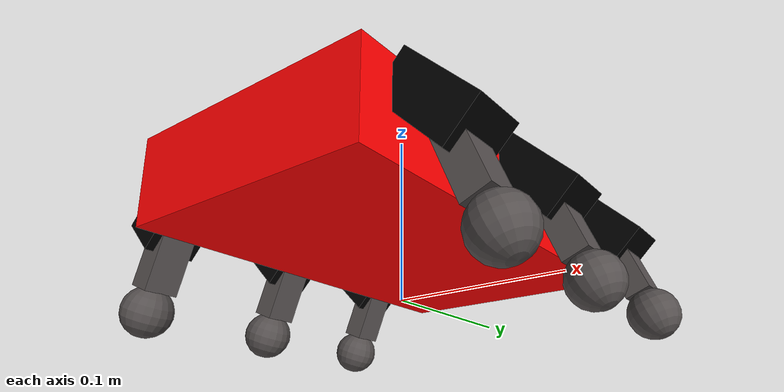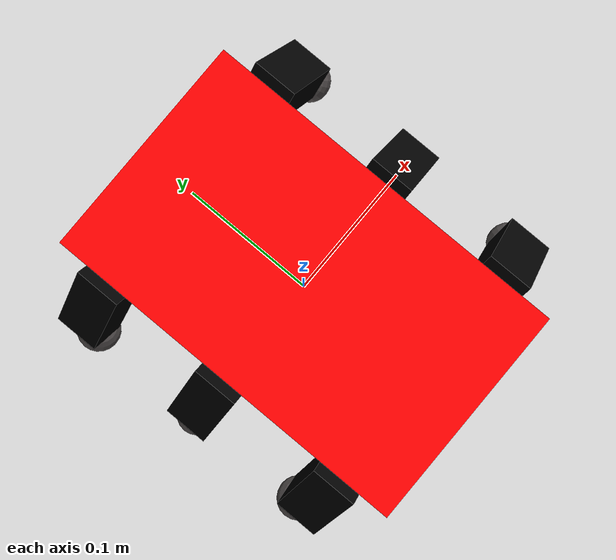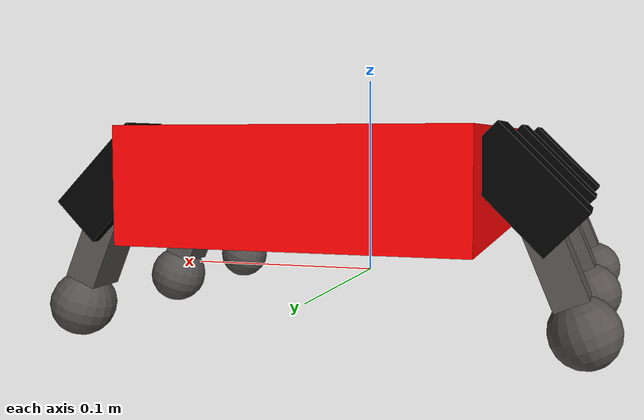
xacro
<?xml version="1.0"?>

<robot name="aranya6" xmlns:xacro="http://ros.org/wiki/xacro">

    <material name="red">
        <color rgba="1.0 0.0 0.0 1.0"/>
    </material>

    <material name="black">
        <color rgba="0.0 0.0 0.0 1.0"/>
    </material>

    <material name="gray">
        <color rgba="0.33 0.309 0.30588 1.0"/>
    </material>

    <!--copiat del tutorial-->
  <xacro:macro name="inercia_inicial" params="mass">
    <inertial>
      <mass value="${mass}" />
      <inertia ixx="1e-3" ixy="0.0" ixz="0.0" iyy="1e-3" iyz="0.0" izz="1e-3" />
    </inertial>
  </xacro:macro>

    <link name="base_footprint"/>

    <link name="base">
        <visual>
            <geometry>
                <box size="0.15 0.25 0.05"/> <!--Asi ni ha que especificar volumen-->
            </geometry>
            <origin xyz="0.0 0.0 0.0" rpy="0.0 0.0 0.0"/>
            <material name="red"/>
        </visual>
    </link>

    <joint name="base_joint" type="fixed">
        <parent link="base_footprint"/>
        <child link="base"/>
        <origin xyz="0.0 0.0 0.05" rpy="0.0 0.0 0.0"/>
    </joint>

    <xacro:macro name="articulacion1" params="nombre dx dy neg">
        <link name="articulacion1_${nombre}">
            <visual>
                <geometry>
                    <box size="0.025 0.03 0.05"/>
                </geometry>
                <origin xyz="0.0 0.0 0.0" rpy="0.0 0.0 0.0"/>
                <material name="black"/>
            </visual>

            <collision>
                <geometry>
                    <box size="0.025 0.03 0.05"/>
                </geometry>
            </collision>
        </link>

        <joint name="base_pata_${nombre}" type="revolute">
            <parent link="base"/>
            <child link="articulacion1_${nombre}"/>
            <origin xyz="${dx} ${dy} 0.0" rpy="0.0 ${neg*pi/4} 0.0"/>

            <axis xyz="0.0 1.0 0.0"/>
            <limit lower="${-pi/4}" upper="${pi/4}" effort="10.0" velocity="1.0"/>
        </joint>

    </xacro:macro>

    <xacro:articulacion1 nombre="1" dx="0.09" dy="0.09" neg="-1"/>
    <xacro:articulacion1 nombre="2" dx="-0.09" dy="0.09" neg="1"/>
    <xacro:articulacion1 nombre="3" dx="0.09" dy="-0.09" neg="-1"/>
    <xacro:articulacion1 nombre="4" dx="-0.09" dy="-0.09" neg="1"/>
    <xacro:articulacion1 nombre="5" dx="0.09" dy="0.0" neg="-1"/>
    <xacro:articulacion1 nombre="6" dx="-0.09" dy="0.0" neg="1"/>

    <xacro:macro name="articulacion2" params="nombre neg">
        <link name="articulacion2_${nombre}">
            <visual>
                <geometry>
                    <box size="0.015 0.02 0.035"/>
                </geometry>
                <origin xyz="0.0 0.0 0.0" rpy="0.0 0.0 0.0"/>
                <material name="gray"/>
            </visual>

            <collision>
                <geometry>
                    <box size="0.015 0.02 0.035"/>
                </geometry>
            </collision>
        </link>

        <joint name="artc1_a_artc2_${nombre}" type="revolute">
            <parent link="articulacion1_${nombre}"/>
            <child link="articulacion2_${nombre}"/>
            <origin xyz="${neg*-0.012} 0.0 -0.03" rpy="0.0 ${neg*pi/8} 0.0"/>

            <axis xyz="0.0 1.0 0.0"/>
            <limit lower="${-pi/4}" upper="${pi/4}" effort="10.0" velocity="1.0"/>
        </joint>

    </xacro:macro>

    <xacro:articulacion2 nombre="1" neg="1"/>
    <xacro:articulacion2 nombre="2" neg="-1"/>
    <xacro:articulacion2 nombre="3" neg="1"/>
    <xacro:articulacion2 nombre="4" neg="-1"/>
    <xacro:articulacion2 nombre="5" neg="1"/>
    <xacro:articulacion2 nombre="6" neg="-1"/>

    <xacro:macro name="pie" params="nombre">
        <link name="pie_${nombre}">
            <visual>
                <geometry>
                    <sphere radius="0.015"/>
                </geometry>
                <origin xyz="0.0 0.0 0.0" rpy="0.0 0.0 0.0"/>
                <material name="gray"/>
            </visual>

            <collision>
                <geometry>
                    <sphere radius="0.02"/>
                </geometry>
            </collision>
        </link>

        <joint name="artc2_a_pie_${nombre}" type="fixed">
            <parent link="articulacion2_${nombre}"/>
            <child link="pie_${nombre}"/>
            <origin xyz="0.0 0.0 -0.03" rpy="0.0 0.0 0.0"/>
        </joint>

    </xacro:macro>

    <xacro:pie nombre="1" />
    <xacro:pie nombre="2" />
    <xacro:pie nombre="3" />
    <xacro:pie nombre="4" />
    <xacro:pie nombre="5" />
    <xacro:pie nombre="6" />

<!--la x es el eix roig i la y es el eix vert
  distancies en metros y angles en radians -->
</robot>
